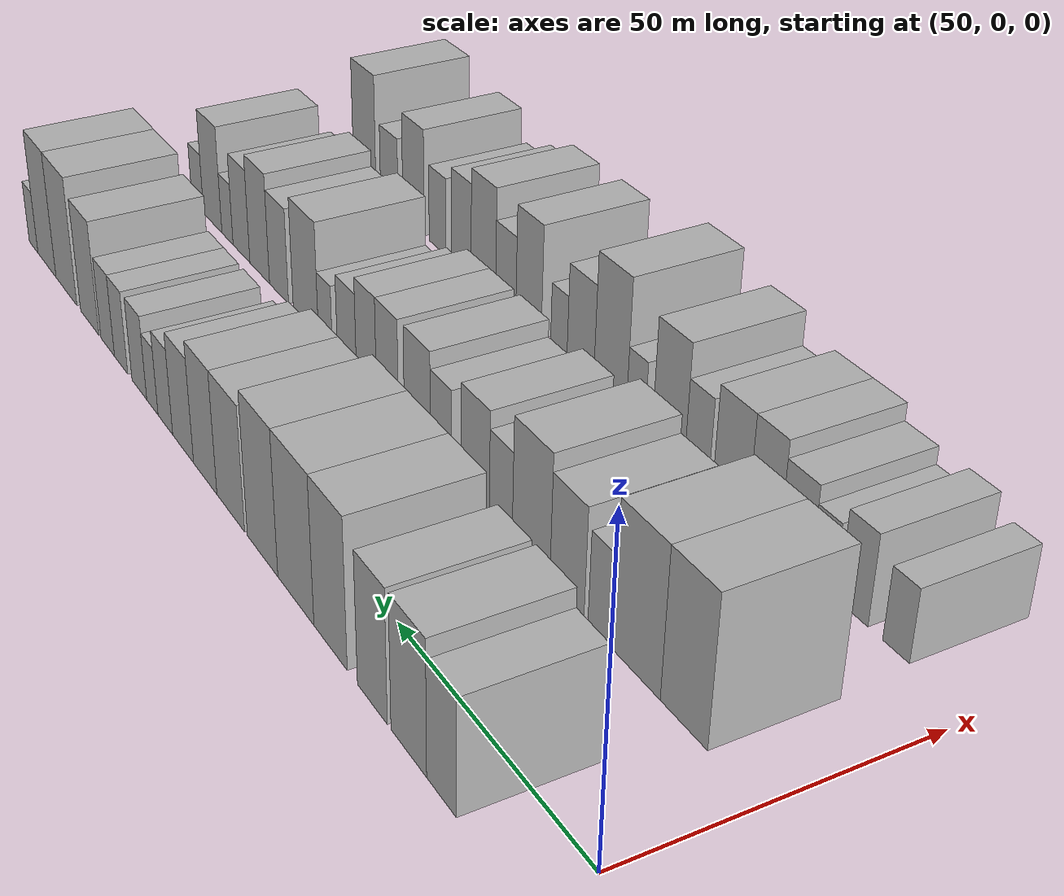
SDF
<sdf version="1.6">
 <world name="default">
  <model name="building_37">
   <static>1</static>
   <pose>50.0000 18.7815 0 0.000000 0.000000 0.000000</pose>
   <link name="link">
    <pose>0 0 9.00 0 0 0</pose>
    <collision name="collision"><geometry><box><size>20.0000 7.4841 18.0000</size></box></geometry></collision>
    <visual name="visual">
     <cast_shadows>0</cast_shadows>
     <geometry><box><size>20.0000 7.4841 18.0000</size></box></geometry>
     <material>
      <script>
       <uri>model://HANNAS_wall/materials/scripts</uri>
       <uri>model://HANNAS_wall/materials/textures</uri>
       <name>vrc/HANNAS_wall</name>
      </script>
     </material>
    </visual>
   </link>
  </model>
  <model name="building_38">
   <static>1</static>
   <pose>50.0000 27.2615 0 0.000000 0.000000 0.000000</pose>
   <link name="link">
    <pose>0 0 10.50 0 0 0</pose>
    <collision name="collision"><geometry><box><size>20.0000 9.4758 21.0000</size></box></geometry></collision>
    <visual name="visual">
     <cast_shadows>0</cast_shadows>
     <geometry><box><size>20.0000 9.4758 21.0000</size></box></geometry>
     <material>
      <script>
       <uri>model://HANNAS_wall/materials/scripts</uri>
       <uri>model://HANNAS_wall/materials/textures</uri>
       <name>vrc/HANNAS_wall</name>
      </script>
     </material>
    </visual>
   </link>
  </model>
  <model name="building_39">
   <static>1</static>
   <pose>50.0000 37.2371 0 0.000000 0.000000 0.000000</pose>
   <link name="link">
    <pose>0 0 10.50 0 0 0</pose>
    <collision name="collision"><geometry><box><size>20.0000 8.4755 21.0000</size></box></geometry></collision>
    <visual name="visual">
     <cast_shadows>0</cast_shadows>
     <geometry><box><size>20.0000 8.4755 21.0000</size></box></geometry>
     <material>
      <script>
       <uri>model://HANNAS_wall/materials/scripts</uri>
       <uri>model://HANNAS_wall/materials/textures</uri>
       <name>vrc/HANNAS_wall</name>
      </script>
     </material>
    </visual>
   </link>
  </model>
  <model name="building_40">
   <static>1</static>
   <pose>50.0000 49.5803 0 0.000000 0.000000 0.000000</pose>
   <link name="link">
    <pose>0 0 12.00 0 0 0</pose>
    <collision name="collision"><geometry><box><size>20.0000 10.2108 24.0000</size></box></geometry></collision>
    <visual name="visual">
     <cast_shadows>0</cast_shadows>
     <geometry><box><size>20.0000 10.2108 24.0000</size></box></geometry>
     <material>
      <script>
       <uri>model://HANNAS_wall/materials/scripts</uri>
       <uri>model://HANNAS_wall/materials/textures</uri>
       <name>vrc/HANNAS_wall</name>
      </script>
     </material>
    </visual>
   </link>
  </model>
  <model name="building_41">
   <static>1</static>
   <pose>50.0000 60.5973 0 0.000000 0.000000 0.000000</pose>
   <link name="link">
    <pose>0 0 12.00 0 0 0</pose>
    <collision name="collision"><geometry><box><size>20.0000 11.8232 24.0000</size></box></geometry></collision>
    <visual name="visual">
     <cast_shadows>0</cast_shadows>
     <geometry><box><size>20.0000 11.8232 24.0000</size></box></geometry>
     <material>
      <script>
       <uri>model://HANNAS_wall/materials/scripts</uri>
       <uri>model://HANNAS_wall/materials/textures</uri>
       <name>vrc/HANNAS_wall</name>
      </script>
     </material>
    </visual>
   </link>
  </model>
  <model name="building_42">
   <static>1</static>
   <pose>50.0000 71.8486 0 0.000000 0.000000 0.000000</pose>
   <link name="link">
    <pose>0 0 12.00 0 0 0</pose>
    <collision name="collision"><geometry><box><size>20.0000 10.6795 24.0000</size></box></geometry></collision>
    <visual name="visual">
     <cast_shadows>0</cast_shadows>
     <geometry><box><size>20.0000 10.6795 24.0000</size></box></geometry>
     <material>
      <script>
       <uri>model://HANNAS_wall/materials/scripts</uri>
       <uri>model://HANNAS_wall/materials/textures</uri>
       <name>vrc/HANNAS_wall</name>
      </script>
     </material>
    </visual>
   </link>
  </model>
  <model name="building_43">
   <static>1</static>
   <pose>50.0000 83.3677 0 0.000000 0.000000 0.000000</pose>
   <link name="link">
    <pose>0 0 10.50 0 0 0</pose>
    <collision name="collision"><geometry><box><size>20.0000 10.3586 21.0000</size></box></geometry></collision>
    <visual name="visual">
     <cast_shadows>0</cast_shadows>
     <geometry><box><size>20.0000 10.3586 21.0000</size></box></geometry>
     <material>
      <script>
       <uri>model://HANNAS_wall/materials/scripts</uri>
       <uri>model://HANNAS_wall/materials/textures</uri>
       <name>vrc/HANNAS_wall</name>
      </script>
     </material>
    </visual>
   </link>
  </model>
  <model name="building_44">
   <static>1</static>
   <pose>50.0000 93.1518 0 0.000000 0.000000 0.000000</pose>
   <link name="link">
    <pose>0 0 10.50 0 0 0</pose>
    <collision name="collision"><geometry><box><size>20.0000 9.2096 21.0000</size></box></geometry></collision>
    <visual name="visual">
     <cast_shadows>0</cast_shadows>
     <geometry><box><size>20.0000 9.2096 21.0000</size></box></geometry>
     <material>
      <script>
       <uri>model://HANNAS_wall/materials/scripts</uri>
       <uri>model://HANNAS_wall/materials/textures</uri>
       <name>vrc/HANNAS_wall</name>
      </script>
     </material>
    </visual>
   </link>
  </model>
  <model name="building_45">
   <static>1</static>
   <pose>50.0000 102.0809 0 0.000000 0.000000 0.000000</pose>
   <link name="link">
    <pose>0 0 9.00 0 0 0</pose>
    <collision name="collision"><geometry><box><size>20.0000 8.6486 18.0000</size></box></geometry></collision>
    <visual name="visual">
     <cast_shadows>0</cast_shadows>
     <geometry><box><size>20.0000 8.6486 18.0000</size></box></geometry>
     <material>
      <script>
       <uri>model://HANNAS_wall/materials/scripts</uri>
       <uri>model://HANNAS_wall/materials/textures</uri>
       <name>vrc/HANNAS_wall</name>
      </script>
     </material>
    </visual>
   </link>
  </model>
  <model name="building_46">
   <static>1</static>
   <pose>50.0000 109.5634 0 0.000000 0.000000 0.000000</pose>
   <link name="link">
    <pose>0 0 7.50 0 0 0</pose>
    <collision name="collision"><geometry><box><size>20.0000 6.3164 15.0000</size></box></geometry></collision>
    <visual name="visual">
     <cast_shadows>0</cast_shadows>
     <geometry><box><size>20.0000 6.3164 15.0000</size></box></geometry>
     <material>
      <script>
       <uri>model://HANNAS_wall/materials/scripts</uri>
       <uri>model://HANNAS_wall/materials/textures</uri>
       <name>vrc/HANNAS_wall</name>
      </script>
     </material>
    </visual>
   </link>
  </model>
  <model name="building_47">
   <static>1</static>
   <pose>50.0000 115.2288 0 0.000000 0.000000 0.000000</pose>
   <link name="link">
    <pose>0 0 6.00 0 0 0</pose>
    <collision name="collision"><geometry><box><size>20.0000 5.0144 12.0000</size></box></geometry></collision>
    <visual name="visual">
     <cast_shadows>0</cast_shadows>
     <geometry><box><size>20.0000 5.0144 12.0000</size></box></geometry>
     <material>
      <script>
       <uri>model://HANNAS_wall/materials/scripts</uri>
       <uri>model://HANNAS_wall/materials/textures</uri>
       <name>vrc/HANNAS_wall</name>
      </script>
     </material>
    </visual>
   </link>
  </model>
  <model name="building_48">
   <static>1</static>
   <pose>50.0000 121.1027 0 0.000000 0.000000 0.000000</pose>
   <link name="link">
    <pose>0 0 7.50 0 0 0</pose>
    <collision name="collision"><geometry><box><size>20.0000 6.7334 15.0000</size></box></geometry></collision>
    <visual name="visual">
     <cast_shadows>0</cast_shadows>
     <geometry><box><size>20.0000 6.7334 15.0000</size></box></geometry>
     <material>
      <script>
       <uri>model://HANNAS_wall/materials/scripts</uri>
       <uri>model://HANNAS_wall/materials/textures</uri>
       <name>vrc/HANNAS_wall</name>
      </script>
     </material>
    </visual>
   </link>
  </model>
  <model name="building_49">
   <static>1</static>
   <pose>50.0000 129.6285 0 0.000000 0.000000 0.000000</pose>
   <link name="link">
    <pose>0 0 7.50 0 0 0</pose>
    <collision name="collision"><geometry><box><size>20.0000 6.3184 15.0000</size></box></geometry></collision>
    <visual name="visual">
     <cast_shadows>0</cast_shadows>
     <geometry><box><size>20.0000 6.3184 15.0000</size></box></geometry>
     <material>
      <script>
       <uri>model://HANNAS_wall/materials/scripts</uri>
       <uri>model://HANNAS_wall/materials/textures</uri>
       <name>vrc/HANNAS_wall</name>
      </script>
     </material>
    </visual>
   </link>
  </model>
  <model name="building_50">
   <static>1</static>
   <pose>50.0000 136.1284 0 0.000000 0.000000 0.000000</pose>
   <link name="link">
    <pose>0 0 7.50 0 0 0</pose>
    <collision name="collision"><geometry><box><size>20.0000 6.6814 15.0000</size></box></geometry></collision>
    <visual name="visual">
     <cast_shadows>0</cast_shadows>
     <geometry><box><size>20.0000 6.6814 15.0000</size></box></geometry>
     <material>
      <script>
       <uri>model://HANNAS_wall/materials/scripts</uri>
       <uri>model://HANNAS_wall/materials/textures</uri>
       <name>vrc/HANNAS_wall</name>
      </script>
     </material>
    </visual>
   </link>
  </model>
  <model name="building_51">
   <static>1</static>
   <pose>50.0000 145.1727 0 0.000000 0.000000 0.000000</pose>
   <link name="link">
    <pose>0 0 10.50 0 0 0</pose>
    <collision name="collision"><geometry><box><size>20.0000 9.4071 21.0000</size></box></geometry></collision>
    <visual name="visual">
     <cast_shadows>0</cast_shadows>
     <geometry><box><size>20.0000 9.4071 21.0000</size></box></geometry>
     <material>
      <script>
       <uri>model://HANNAS_wall/materials/scripts</uri>
       <uri>model://HANNAS_wall/materials/textures</uri>
       <name>vrc/HANNAS_wall</name>
      </script>
     </material>
    </visual>
   </link>
  </model>
  <model name="building_52">
   <static>1</static>
   <pose>50.0000 157.5622 0 0.000000 0.000000 0.000000</pose>
   <link name="link">
    <pose>0 0 12.00 0 0 0</pose>
    <collision name="collision"><geometry><box><size>20.0000 11.3720 24.0000</size></box></geometry></collision>
    <visual name="visual">
     <cast_shadows>0</cast_shadows>
     <geometry><box><size>20.0000 11.3720 24.0000</size></box></geometry>
     <material>
      <script>
       <uri>model://HANNAS_wall/materials/scripts</uri>
       <uri>model://HANNAS_wall/materials/textures</uri>
       <name>vrc/HANNAS_wall</name>
      </script>
     </material>
    </visual>
   </link>
  </model>
  <model name="building_53">
   <static>1</static>
   <pose>50.0000 168.4131 0 0.000000 0.000000 0.000000</pose>
   <link name="link">
    <pose>0 0 12.00 0 0 0</pose>
    <collision name="collision"><geometry><box><size>20.0000 10.3298 24.0000</size></box></geometry></collision>
    <visual name="visual">
     <cast_shadows>0</cast_shadows>
     <geometry><box><size>20.0000 10.3298 24.0000</size></box></geometry>
     <material>
      <script>
       <uri>model://HANNAS_wall/materials/scripts</uri>
       <uri>model://HANNAS_wall/materials/textures</uri>
       <name>vrc/HANNAS_wall</name>
      </script>
     </material>
    </visual>
   </link>
  </model>
  <model name="building_54">
   <static>1</static>
   <pose>50.0000 176.1507 0 0.000000 0.000000 0.000000</pose>
   <link name="link">
    <pose>0 0 6.00 0 0 0</pose>
    <collision name="collision"><geometry><box><size>20.0000 5.1454 12.0000</size></box></geometry></collision>
    <visual name="visual">
     <cast_shadows>0</cast_shadows>
     <geometry><box><size>20.0000 5.1454 12.0000</size></box></geometry>
     <material>
      <script>
       <uri>model://HANNAS_wall/materials/scripts</uri>
       <uri>model://HANNAS_wall/materials/textures</uri>
       <name>vrc/HANNAS_wall</name>
      </script>
     </material>
    </visual>
   </link>
  </model>
  <model name="building_112">
   <static>1</static>
   <pose>82.0000 15.8721 0 0.000000 0.000000 0.000000</pose>
   <link name="link">
    <pose>0 0 12.00 0 0 0</pose>
    <collision name="collision"><geometry><box><size>20.0000 10.3417 24.0000</size></box></geometry></collision>
    <visual name="visual">
     <cast_shadows>0</cast_shadows>
     <geometry><box><size>20.0000 10.3417 24.0000</size></box></geometry>
     <material>
      <script>
       <uri>model://HANNAS_wall/materials/scripts</uri>
       <uri>model://HANNAS_wall/materials/textures</uri>
       <name>vrc/HANNAS_wall</name>
      </script>
     </material>
    </visual>
   </link>
  </model>
  <model name="building_113">
   <static>1</static>
   <pose>82.0000 26.5463 0 0.000000 0.000000 0.000000</pose>
   <link name="link">
    <pose>0 0 12.00 0 0 0</pose>
    <collision name="collision"><geometry><box><size>20.0000 11.0065 24.0000</size></box></geometry></collision>
    <visual name="visual">
     <cast_shadows>0</cast_shadows>
     <geometry><box><size>20.0000 11.0065 24.0000</size></box></geometry>
     <material>
      <script>
       <uri>model://HANNAS_wall/materials/scripts</uri>
       <uri>model://HANNAS_wall/materials/textures</uri>
       <name>vrc/HANNAS_wall</name>
      </script>
     </material>
    </visual>
   </link>
  </model>
  <model name="building_114">
   <static>1</static>
   <pose>82.0000 35.1488 0 0.000000 0.000000 0.000000</pose>
   <link name="link">
    <pose>0 0 7.50 0 0 0</pose>
    <collision name="collision"><geometry><box><size>20.0000 6.1986 15.0000</size></box></geometry></collision>
    <visual name="visual">
     <cast_shadows>0</cast_shadows>
     <geometry><box><size>20.0000 6.1986 15.0000</size></box></geometry>
     <material>
      <script>
       <uri>model://HANNAS_wall/materials/scripts</uri>
       <uri>model://HANNAS_wall/materials/textures</uri>
       <name>vrc/HANNAS_wall</name>
      </script>
     </material>
    </visual>
   </link>
  </model>
  <model name="building_115">
   <static>1</static>
   <pose>82.0000 43.6789 0 0.000000 0.000000 0.000000</pose>
   <link name="link">
    <pose>0 0 9.00 0 0 0</pose>
    <collision name="collision"><geometry><box><size>20.0000 8.8616 18.0000</size></box></geometry></collision>
    <visual name="visual">
     <cast_shadows>0</cast_shadows>
     <geometry><box><size>20.0000 8.8616 18.0000</size></box></geometry>
     <material>
      <script>
       <uri>model://HANNAS_wall/materials/scripts</uri>
       <uri>model://HANNAS_wall/materials/textures</uri>
       <name>vrc/HANNAS_wall</name>
      </script>
     </material>
    </visual>
   </link>
  </model>
  <model name="building_116">
   <static>1</static>
   <pose>82.0000 53.2702 0 0.000000 0.000000 0.000000</pose>
   <link name="link">
    <pose>0 0 10.50 0 0 0</pose>
    <collision name="collision"><geometry><box><size>20.0000 10.3209 21.0000</size></box></geometry></collision>
    <visual name="visual">
     <cast_shadows>0</cast_shadows>
     <geometry><box><size>20.0000 10.3209 21.0000</size></box></geometry>
     <material>
      <script>
       <uri>model://HANNAS_wall/materials/scripts</uri>
       <uri>model://HANNAS_wall/materials/textures</uri>
       <name>vrc/HANNAS_wall</name>
      </script>
     </material>
    </visual>
   </link>
  </model>
  <model name="building_117">
   <static>1</static>
   <pose>82.0000 61.7337 0 0.000000 0.000000 0.000000</pose>
   <link name="link">
    <pose>0 0 7.50 0 0 0</pose>
    <collision name="collision"><geometry><box><size>20.0000 6.6061 15.0000</size></box></geometry></collision>
    <visual name="visual">
     <cast_shadows>0</cast_shadows>
     <geometry><box><size>20.0000 6.6061 15.0000</size></box></geometry>
     <material>
      <script>
       <uri>model://HANNAS_wall/materials/scripts</uri>
       <uri>model://HANNAS_wall/materials/textures</uri>
       <name>vrc/HANNAS_wall</name>
      </script>
     </material>
    </visual>
   </link>
  </model>
  <model name="building_118">
   <static>1</static>
   <pose>82.0000 69.2477 0 0.000000 0.000000 0.000000</pose>
   <link name="link">
    <pose>0 0 9.00 0 0 0</pose>
    <collision name="collision"><geometry><box><size>20.0000 8.4220 18.0000</size></box></geometry></collision>
    <visual name="visual">
     <cast_shadows>0</cast_shadows>
     <geometry><box><size>20.0000 8.4220 18.0000</size></box></geometry>
     <material>
      <script>
       <uri>model://HANNAS_wall/materials/scripts</uri>
       <uri>model://HANNAS_wall/materials/textures</uri>
       <name>vrc/HANNAS_wall</name>
      </script>
     </material>
    </visual>
   </link>
  </model>
  <model name="building_119">
   <static>1</static>
   <pose>82.0000 79.7962 0 0.000000 0.000000 0.000000</pose>
   <link name="link">
    <pose>0 0 7.50 0 0 0</pose>
    <collision name="collision"><geometry><box><size>20.0000 6.6749 15.0000</size></box></geometry></collision>
    <visual name="visual">
     <cast_shadows>0</cast_shadows>
     <geometry><box><size>20.0000 6.6749 15.0000</size></box></geometry>
     <material>
      <script>
       <uri>model://HANNAS_wall/materials/scripts</uri>
       <uri>model://HANNAS_wall/materials/textures</uri>
       <name>vrc/HANNAS_wall</name>
      </script>
     </material>
    </visual>
   </link>
  </model>
  <model name="building_120">
   <static>1</static>
   <pose>82.0000 87.4304 0 0.000000 0.000000 0.000000</pose>
   <link name="link">
    <pose>0 0 9.00 0 0 0</pose>
    <collision name="collision"><geometry><box><size>20.0000 8.5935 18.0000</size></box></geometry></collision>
    <visual name="visual">
     <cast_shadows>0</cast_shadows>
     <geometry><box><size>20.0000 8.5935 18.0000</size></box></geometry>
     <material>
      <script>
       <uri>model://HANNAS_wall/materials/scripts</uri>
       <uri>model://HANNAS_wall/materials/textures</uri>
       <name>vrc/HANNAS_wall</name>
      </script>
     </material>
    </visual>
   </link>
  </model>
  <model name="building_121">
   <static>1</static>
   <pose>82.0000 97.5639 0 0.000000 0.000000 0.000000</pose>
   <link name="link">
    <pose>0 0 9.00 0 0 0</pose>
    <collision name="collision"><geometry><box><size>20.0000 7.6736 18.0000</size></box></geometry></collision>
    <visual name="visual">
     <cast_shadows>0</cast_shadows>
     <geometry><box><size>20.0000 7.6736 18.0000</size></box></geometry>
     <material>
      <script>
       <uri>model://HANNAS_wall/materials/scripts</uri>
       <uri>model://HANNAS_wall/materials/textures</uri>
       <name>vrc/HANNAS_wall</name>
      </script>
     </material>
    </visual>
   </link>
  </model>
  <model name="building_122">
   <static>1</static>
   <pose>82.0000 105.0400 0 0.000000 0.000000 0.000000</pose>
   <link name="link">
    <pose>0 0 9.00 0 0 0</pose>
    <collision name="collision"><geometry><box><size>20.0000 7.2786 18.0000</size></box></geometry></collision>
    <visual name="visual">
     <cast_shadows>0</cast_shadows>
     <geometry><box><size>20.0000 7.2786 18.0000</size></box></geometry>
     <material>
      <script>
       <uri>model://HANNAS_wall/materials/scripts</uri>
       <uri>model://HANNAS_wall/materials/textures</uri>
       <name>vrc/HANNAS_wall</name>
      </script>
     </material>
    </visual>
   </link>
  </model>
  <model name="building_123">
   <static>1</static>
   <pose>82.0000 112.2425 0 0.000000 0.000000 0.000000</pose>
   <link name="link">
    <pose>0 0 7.50 0 0 0</pose>
    <collision name="collision"><geometry><box><size>20.0000 7.1264 15.0000</size></box></geometry></collision>
    <visual name="visual">
     <cast_shadows>0</cast_shadows>
     <geometry><box><size>20.0000 7.1264 15.0000</size></box></geometry>
     <material>
      <script>
       <uri>model://HANNAS_wall/materials/scripts</uri>
       <uri>model://HANNAS_wall/materials/textures</uri>
       <name>vrc/HANNAS_wall</name>
      </script>
     </material>
    </visual>
   </link>
  </model>
  <model name="building_124">
   <static>1</static>
   <pose>82.0000 120.5322 0 0.000000 0.000000 0.000000</pose>
   <link name="link">
    <pose>0 0 6.00 0 0 0</pose>
    <collision name="collision"><geometry><box><size>20.0000 5.4531 12.0000</size></box></geometry></collision>
    <visual name="visual">
     <cast_shadows>0</cast_shadows>
     <geometry><box><size>20.0000 5.4531 12.0000</size></box></geometry>
     <material>
      <script>
       <uri>model://HANNAS_wall/materials/scripts</uri>
       <uri>model://HANNAS_wall/materials/textures</uri>
       <name>vrc/HANNAS_wall</name>
      </script>
     </material>
    </visual>
   </link>
  </model>
  <model name="building_125">
   <static>1</static>
   <pose>82.0000 128.3795 0 0.000000 0.000000 0.000000</pose>
   <link name="link">
    <pose>0 0 10.50 0 0 0</pose>
    <collision name="collision"><geometry><box><size>20.0000 10.2415 21.0000</size></box></geometry></collision>
    <visual name="visual">
     <cast_shadows>0</cast_shadows>
     <geometry><box><size>20.0000 10.2415 21.0000</size></box></geometry>
     <material>
      <script>
       <uri>model://HANNAS_wall/materials/scripts</uri>
       <uri>model://HANNAS_wall/materials/textures</uri>
       <name>vrc/HANNAS_wall</name>
      </script>
     </material>
    </visual>
   </link>
  </model>
  <model name="building_126">
   <static>1</static>
   <pose>82.0000 139.5724 0 0.000000 0.000000 0.000000</pose>
   <link name="link">
    <pose>0 0 9.00 0 0 0</pose>
    <collision name="collision"><geometry><box><size>20.0000 8.1443 18.0000</size></box></geometry></collision>
    <visual name="visual">
     <cast_shadows>0</cast_shadows>
     <geometry><box><size>20.0000 8.1443 18.0000</size></box></geometry>
     <material>
      <script>
       <uri>model://HANNAS_wall/materials/scripts</uri>
       <uri>model://HANNAS_wall/materials/textures</uri>
       <name>vrc/HANNAS_wall</name>
      </script>
     </material>
    </visual>
   </link>
  </model>
  <model name="building_127">
   <static>1</static>
   <pose>82.0000 148.0279 0 0.000000 0.000000 0.000000</pose>
   <link name="link">
    <pose>0 0 10.50 0 0 0</pose>
    <collision name="collision"><geometry><box><size>20.0000 8.7666 21.0000</size></box></geometry></collision>
    <visual name="visual">
     <cast_shadows>0</cast_shadows>
     <geometry><box><size>20.0000 8.7666 21.0000</size></box></geometry>
     <material>
      <script>
       <uri>model://HANNAS_wall/materials/scripts</uri>
       <uri>model://HANNAS_wall/materials/textures</uri>
       <name>vrc/HANNAS_wall</name>
      </script>
     </material>
    </visual>
   </link>
  </model>
  <model name="building_128">
   <static>1</static>
   <pose>82.0000 156.3104 0 0.000000 0.000000 0.000000</pose>
   <link name="link">
    <pose>0 0 9.00 0 0 0</pose>
    <collision name="collision"><geometry><box><size>20.0000 7.7985 18.0000</size></box></geometry></collision>
    <visual name="visual">
     <cast_shadows>0</cast_shadows>
     <geometry><box><size>20.0000 7.7985 18.0000</size></box></geometry>
     <material>
      <script>
       <uri>model://HANNAS_wall/materials/scripts</uri>
       <uri>model://HANNAS_wall/materials/textures</uri>
       <name>vrc/HANNAS_wall</name>
      </script>
     </material>
    </visual>
   </link>
  </model>
  <model name="building_129">
   <static>1</static>
   <pose>82.0000 162.8617 0 0.000000 0.000000 0.000000</pose>
   <link name="link">
    <pose>0 0 6.00 0 0 0</pose>
    <collision name="collision"><geometry><box><size>20.0000 5.3041 12.0000</size></box></geometry></collision>
    <visual name="visual">
     <cast_shadows>0</cast_shadows>
     <geometry><box><size>20.0000 5.3041 12.0000</size></box></geometry>
     <material>
      <script>
       <uri>model://HANNAS_wall/materials/scripts</uri>
       <uri>model://HANNAS_wall/materials/textures</uri>
       <name>vrc/HANNAS_wall</name>
      </script>
     </material>
    </visual>
   </link>
  </model>
  <model name="building_130">
   <static>1</static>
   <pose>82.0000 170.0066 0 0.000000 0.000000 0.000000</pose>
   <link name="link">
    <pose>0 0 10.50 0 0 0</pose>
    <collision name="collision"><geometry><box><size>20.0000 8.9857 21.0000</size></box></geometry></collision>
    <visual name="visual">
     <cast_shadows>0</cast_shadows>
     <geometry><box><size>20.0000 8.9857 21.0000</size></box></geometry>
     <material>
      <script>
       <uri>model://HANNAS_wall/materials/scripts</uri>
       <uri>model://HANNAS_wall/materials/textures</uri>
       <name>vrc/HANNAS_wall</name>
      </script>
     </material>
    </visual>
   </link>
  </model>
  <model name="building_131">
   <static>1</static>
   <pose>82.0000 177.4424 0 0.000000 0.000000 0.000000</pose>
   <link name="link">
    <pose>0 0 6.00 0 0 0</pose>
    <collision name="collision"><geometry><box><size>20.0000 5.8857 12.0000</size></box></geometry></collision>
    <visual name="visual">
     <cast_shadows>0</cast_shadows>
     <geometry><box><size>20.0000 5.8857 12.0000</size></box></geometry>
     <material>
      <script>
       <uri>model://HANNAS_wall/materials/scripts</uri>
       <uri>model://HANNAS_wall/materials/textures</uri>
       <name>vrc/HANNAS_wall</name>
      </script>
     </material>
    </visual>
   </link>
  </model>
  <model name="building_191">
   <static>1</static>
   <pose>114.0000 14.6519 0 0.000000 0.000000 0.000000</pose>
   <link name="link">
    <pose>0 0 6.00 0 0 0</pose>
    <collision name="collision"><geometry><box><size>20.0000 5.3671 12.0000</size></box></geometry></collision>
    <visual name="visual">
     <cast_shadows>0</cast_shadows>
     <geometry><box><size>20.0000 5.3671 12.0000</size></box></geometry>
     <material>
      <script>
       <uri>model://HANNAS_wall/materials/scripts</uri>
       <uri>model://HANNAS_wall/materials/textures</uri>
       <name>vrc/HANNAS_wall</name>
      </script>
     </material>
    </visual>
   </link>
  </model>
  <model name="building_192">
   <static>1</static>
   <pose>114.0000 23.4452 0 0.000000 0.000000 0.000000</pose>
   <link name="link">
    <pose>0 0 7.50 0 0 0</pose>
    <collision name="collision"><geometry><box><size>20.0000 6.2194 15.0000</size></box></geometry></collision>
    <visual name="visual">
     <cast_shadows>0</cast_shadows>
     <geometry><box><size>20.0000 6.2194 15.0000</size></box></geometry>
     <material>
      <script>
       <uri>model://HANNAS_wall/materials/scripts</uri>
       <uri>model://HANNAS_wall/materials/textures</uri>
       <name>vrc/HANNAS_wall</name>
      </script>
     </material>
    </visual>
   </link>
  </model>
  <model name="building_193">
   <static>1</static>
   <pose>114.0000 30.0921 0 0.000000 0.000000 0.000000</pose>
   <link name="link">
    <pose>0 0 6.00 0 0 0</pose>
    <collision name="collision"><geometry><box><size>20.0000 5.0745 12.0000</size></box></geometry></collision>
    <visual name="visual">
     <cast_shadows>0</cast_shadows>
     <geometry><box><size>20.0000 5.0745 12.0000</size></box></geometry>
     <material>
      <script>
       <uri>model://HANNAS_wall/materials/scripts</uri>
       <uri>model://HANNAS_wall/materials/textures</uri>
       <name>vrc/HANNAS_wall</name>
      </script>
     </material>
    </visual>
   </link>
  </model>
  <model name="building_194">
   <static>1</static>
   <pose>114.0000 36.2184 0 0.000000 0.000000 0.000000</pose>
   <link name="link">
    <pose>0 0 7.50 0 0 0</pose>
    <collision name="collision"><geometry><box><size>20.0000 7.1781 15.0000</size></box></geometry></collision>
    <visual name="visual">
     <cast_shadows>0</cast_shadows>
     <geometry><box><size>20.0000 7.1781 15.0000</size></box></geometry>
     <material>
      <script>
       <uri>model://HANNAS_wall/materials/scripts</uri>
       <uri>model://HANNAS_wall/materials/textures</uri>
       <name>vrc/HANNAS_wall</name>
      </script>
     </material>
    </visual>
   </link>
  </model>
  <model name="building_195">
   <static>1</static>
   <pose>114.0000 43.5138 0 0.000000 0.000000 0.000000</pose>
   <link name="link">
    <pose>0 0 9.00 0 0 0</pose>
    <collision name="collision"><geometry><box><size>20.0000 7.4126 18.0000</size></box></geometry></collision>
    <visual name="visual">
     <cast_shadows>0</cast_shadows>
     <geometry><box><size>20.0000 7.4126 18.0000</size></box></geometry>
     <material>
      <script>
       <uri>model://HANNAS_wall/materials/scripts</uri>
       <uri>model://HANNAS_wall/materials/textures</uri>
       <name>vrc/HANNAS_wall</name>
      </script>
     </material>
    </visual>
   </link>
  </model>
  <model name="building_196">
   <static>1</static>
   <pose>114.0000 51.5668 0 0.000000 0.000000 0.000000</pose>
   <link name="link">
    <pose>0 0 9.00 0 0 0</pose>
    <collision name="collision"><geometry><box><size>20.0000 8.6933 18.0000</size></box></geometry></collision>
    <visual name="visual">
     <cast_shadows>0</cast_shadows>
     <geometry><box><size>20.0000 8.6933 18.0000</size></box></geometry>
     <material>
      <script>
       <uri>model://HANNAS_wall/materials/scripts</uri>
       <uri>model://HANNAS_wall/materials/textures</uri>
       <name>vrc/HANNAS_wall</name>
      </script>
     </material>
    </visual>
   </link>
  </model>
  <model name="building_197">
   <static>1</static>
   <pose>114.0000 60.0441 0 0.000000 0.000000 0.000000</pose>
   <link name="link">
    <pose>0 0 7.50 0 0 0</pose>
    <collision name="collision"><geometry><box><size>20.0000 6.2613 15.0000</size></box></geometry></collision>
    <visual name="visual">
     <cast_shadows>0</cast_shadows>
     <geometry><box><size>20.0000 6.2613 15.0000</size></box></geometry>
     <material>
      <script>
       <uri>model://HANNAS_wall/materials/scripts</uri>
       <uri>model://HANNAS_wall/materials/textures</uri>
       <name>vrc/HANNAS_wall</name>
      </script>
     </material>
    </visual>
   </link>
  </model>
  <model name="building_198">
   <static>1</static>
   <pose>114.0000 67.5379 0 0.000000 0.000000 0.000000</pose>
   <link name="link">
    <pose>0 0 10.50 0 0 0</pose>
    <collision name="collision"><geometry><box><size>20.0000 8.7264 21.0000</size></box></geometry></collision>
    <visual name="visual">
     <cast_shadows>0</cast_shadows>
     <geometry><box><size>20.0000 8.7264 21.0000</size></box></geometry>
     <material>
      <script>
       <uri>model://HANNAS_wall/materials/scripts</uri>
       <uri>model://HANNAS_wall/materials/textures</uri>
       <name>vrc/HANNAS_wall</name>
      </script>
     </material>
    </visual>
   </link>
  </model>
  <model name="building_199">
   <static>1</static>
   <pose>114.0000 76.5155 0 0.000000 0.000000 0.000000</pose>
   <link name="link">
    <pose>0 0 6.00 0 0 0</pose>
    <collision name="collision"><geometry><box><size>20.0000 5.2288 12.0000</size></box></geometry></collision>
    <visual name="visual">
     <cast_shadows>0</cast_shadows>
     <geometry><box><size>20.0000 5.2288 12.0000</size></box></geometry>
     <material>
      <script>
       <uri>model://HANNAS_wall/materials/scripts</uri>
       <uri>model://HANNAS_wall/materials/textures</uri>
       <name>vrc/HANNAS_wall</name>
      </script>
     </material>
    </visual>
   </link>
  </model>
  <model name="building_200">
   <static>1</static>
   <pose>114.0000 83.9352 0 0.000000 0.000000 0.000000</pose>
   <link name="link">
    <pose>0 0 12.00 0 0 0</pose>
    <collision name="collision"><geometry><box><size>20.0000 9.6106 24.0000</size></box></geometry></collision>
    <visual name="visual">
     <cast_shadows>0</cast_shadows>
     <geometry><box><size>20.0000 9.6106 24.0000</size></box></geometry>
     <material>
      <script>
       <uri>model://HANNAS_wall/materials/scripts</uri>
       <uri>model://HANNAS_wall/materials/textures</uri>
       <name>vrc/HANNAS_wall</name>
      </script>
     </material>
    </visual>
   </link>
  </model>
  <model name="building_201">
   <static>1</static>
   <pose>114.0000 92.8392 0 0.000000 0.000000 0.000000</pose>
   <link name="link">
    <pose>0 0 9.00 0 0 0</pose>
    <collision name="collision"><geometry><box><size>20.0000 8.1973 18.0000</size></box></geometry></collision>
    <visual name="visual">
     <cast_shadows>0</cast_shadows>
     <geometry><box><size>20.0000 8.1973 18.0000</size></box></geometry>
     <material>
      <script>
       <uri>model://HANNAS_wall/materials/scripts</uri>
       <uri>model://HANNAS_wall/materials/textures</uri>
       <name>vrc/HANNAS_wall</name>
      </script>
     </material>
    </visual>
   </link>
  </model>
  <model name="building_202">
   <static>1</static>
   <pose>114.0000 99.5300 0 0.000000 0.000000 0.000000</pose>
   <link name="link">
    <pose>0 0 6.00 0 0 0</pose>
    <collision name="collision"><geometry><box><size>20.0000 5.1845 12.0000</size></box></geometry></collision>
    <visual name="visual">
     <cast_shadows>0</cast_shadows>
     <geometry><box><size>20.0000 5.1845 12.0000</size></box></geometry>
     <material>
      <script>
       <uri>model://HANNAS_wall/materials/scripts</uri>
       <uri>model://HANNAS_wall/materials/textures</uri>
       <name>vrc/HANNAS_wall</name>
      </script>
     </material>
    </visual>
   </link>
  </model>
  <model name="building_203">
   <static>1</static>
   <pose>114.0000 109.3611 0 0.000000 0.000000 0.000000</pose>
   <link name="link">
    <pose>0 0 10.50 0 0 0</pose>
    <collision name="collision"><geometry><box><size>20.0000 8.4777 21.0000</size></box></geometry></collision>
    <visual name="visual">
     <cast_shadows>0</cast_shadows>
     <geometry><box><size>20.0000 8.4777 21.0000</size></box></geometry>
     <material>
      <script>
       <uri>model://HANNAS_wall/materials/scripts</uri>
       <uri>model://HANNAS_wall/materials/textures</uri>
       <name>vrc/HANNAS_wall</name>
      </script>
     </material>
    </visual>
   </link>
  </model>
  <model name="building_204">
   <static>1</static>
   <pose>114.0000 117.0825 0 0.000000 0.000000 0.000000</pose>
   <link name="link">
    <pose>0 0 7.50 0 0 0</pose>
    <collision name="collision"><geometry><box><size>20.0000 6.9651 15.0000</size></box></geometry></collision>
    <visual name="visual">
     <cast_shadows>0</cast_shadows>
     <geometry><box><size>20.0000 6.9651 15.0000</size></box></geometry>
     <material>
      <script>
       <uri>model://HANNAS_wall/materials/scripts</uri>
       <uri>model://HANNAS_wall/materials/textures</uri>
       <name>vrc/HANNAS_wall</name>
      </script>
     </material>
    </visual>
   </link>
  </model>
  <model name="building_205">
   <static>1</static>
   <pose>114.0000 124.9749 0 0.000000 0.000000 0.000000</pose>
   <link name="link">
    <pose>0 0 10.50 0 0 0</pose>
    <collision name="collision"><geometry><box><size>20.0000 8.8197 21.0000</size></box></geometry></collision>
    <visual name="visual">
     <cast_shadows>0</cast_shadows>
     <geometry><box><size>20.0000 8.8197 21.0000</size></box></geometry>
     <material>
      <script>
       <uri>model://HANNAS_wall/materials/scripts</uri>
       <uri>model://HANNAS_wall/materials/textures</uri>
       <name>vrc/HANNAS_wall</name>
      </script>
     </material>
    </visual>
   </link>
  </model>
  <model name="building_206">
   <static>1</static>
   <pose>114.0000 133.0611 0 0.000000 0.000000 0.000000</pose>
   <link name="link">
    <pose>0 0 9.00 0 0 0</pose>
    <collision name="collision"><geometry><box><size>20.0000 7.3528 18.0000</size></box></geometry></collision>
    <visual name="visual">
     <cast_shadows>0</cast_shadows>
     <geometry><box><size>20.0000 7.3528 18.0000</size></box></geometry>
     <material>
      <script>
       <uri>model://HANNAS_wall/materials/scripts</uri>
       <uri>model://HANNAS_wall/materials/textures</uri>
       <name>vrc/HANNAS_wall</name>
      </script>
     </material>
    </visual>
   </link>
  </model>
  <model name="building_207">
   <static>1</static>
   <pose>114.0000 141.9728 0 0.000000 0.000000 0.000000</pose>
   <link name="link">
    <pose>0 0 7.50 0 0 0</pose>
    <collision name="collision"><geometry><box><size>20.0000 6.4706 15.0000</size></box></geometry></collision>
    <visual name="visual">
     <cast_shadows>0</cast_shadows>
     <geometry><box><size>20.0000 6.4706 15.0000</size></box></geometry>
     <material>
      <script>
       <uri>model://HANNAS_wall/materials/scripts</uri>
       <uri>model://HANNAS_wall/materials/textures</uri>
       <name>vrc/HANNAS_wall</name>
      </script>
     </material>
    </visual>
   </link>
  </model>
  <model name="building_208">
   <static>1</static>
   <pose>114.0000 151.4759 0 0.000000 0.000000 0.000000</pose>
   <link name="link">
    <pose>0 0 10.50 0 0 0</pose>
    <collision name="collision"><geometry><box><size>20.0000 8.5356 21.0000</size></box></geometry></collision>
    <visual name="visual">
     <cast_shadows>0</cast_shadows>
     <geometry><box><size>20.0000 8.5356 21.0000</size></box></geometry>
     <material>
      <script>
       <uri>model://HANNAS_wall/materials/scripts</uri>
       <uri>model://HANNAS_wall/materials/textures</uri>
       <name>vrc/HANNAS_wall</name>
      </script>
     </material>
    </visual>
   </link>
  </model>
  <model name="building_209">
   <static>1</static>
   <pose>114.0000 161.4097 0 0.000000 0.000000 0.000000</pose>
   <link name="link">
    <pose>0 0 7.50 0 0 0</pose>
    <collision name="collision"><geometry><box><size>20.0000 7.3318 15.0000</size></box></geometry></collision>
    <visual name="visual">
     <cast_shadows>0</cast_shadows>
     <geometry><box><size>20.0000 7.3318 15.0000</size></box></geometry>
     <material>
      <script>
       <uri>model://HANNAS_wall/materials/scripts</uri>
       <uri>model://HANNAS_wall/materials/textures</uri>
       <name>vrc/HANNAS_wall</name>
      </script>
     </material>
    </visual>
   </link>
  </model>
  <model name="building_210">
   <static>1</static>
   <pose>114.0000 171.9750 0 0.000000 0.000000 0.000000</pose>
   <link name="link">
    <pose>0 0 12.00 0 0 0</pose>
    <collision name="collision"><geometry><box><size>20.0000 9.7988 24.0000</size></box></geometry></collision>
    <visual name="visual">
     <cast_shadows>0</cast_shadows>
     <geometry><box><size>20.0000 9.7988 24.0000</size></box></geometry>
     <material>
      <script>
       <uri>model://HANNAS_wall/materials/scripts</uri>
       <uri>model://HANNAS_wall/materials/textures</uri>
       <name>vrc/HANNAS_wall</name>
      </script>
     </material>
    </visual>
   </link>
  </model>
 </world>
</sdf>
